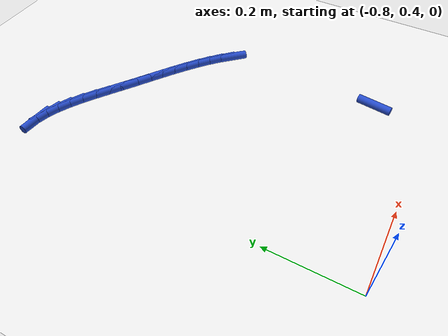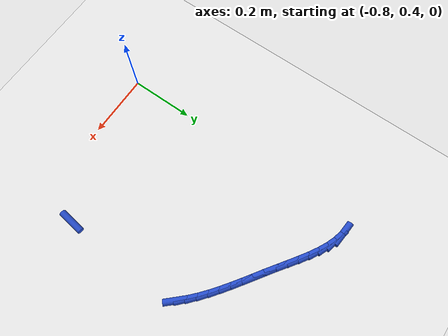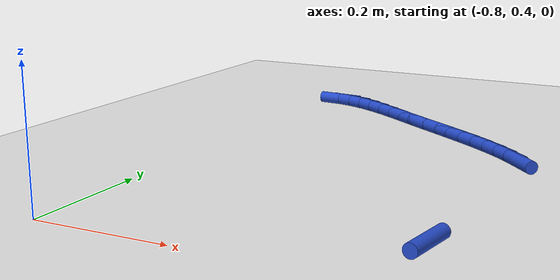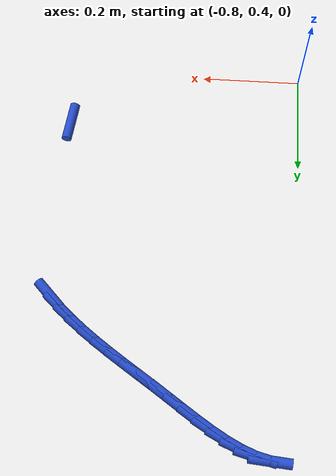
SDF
<sdf version="1.6">
 <world name="default">
  <model name="ground_plane">
   <static>1</static>
   <link name="link">
    <collision name="collision">
     <geometry><plane><normal>0 0 1</normal><size>100 100</size></plane></geometry>
     <surface><friction><ode><mu>100</mu><mu2>50</mu2></ode></friction></surface>
    </collision>
    <visual name="visual">
     <cast_shadows>0</cast_shadows>
     <geometry><plane><normal>0 0 1</normal><size>100 100</size></plane></geometry>
     <material>
      <script><uri>file://media/materials/scripts/gazebo.material</uri><name>Gazebo/WhiteGlow</name></script>
     </material>
    </visual>
   </link>
  </model>
  <model name="line">
   <link name="link_23">
    <pose>-0.33134182901004033 0.524633917281186 0.01 0 1.57 1.4418799400258353</pose>
    <collision name="collision">
     <geometry><cylinder><radius>0.01</radius><length>0.08</length></cylinder></geometry>
    </collision>
    <visual name="visual">
     <material>
      <script><name>Gazebo/Blue</name><uri>file://media/materials/scripts/gazebo.material</uri></script>
     </material>
     <geometry><cylinder><radius>0.01</radius><length>0.08</length></cylinder></geometry>
    </visual>
   </link>
   <link name="link_37">
    <pose>-0.331901536776559 0.9036727298471181 0.01 0 1.57 -0.8080920019695839</pose>
    <collision name="collision">
     <geometry><cylinder><radius>0.01</radius><length>0.08</length></cylinder></geometry>
    </collision>
    <visual name="visual">
     <material>
      <script><name>Gazebo/Blue</name><uri>file://media/materials/scripts/gazebo.material</uri></script>
     </material>
     <geometry><cylinder><radius>0.01</radius><length>0.08</length></cylinder></geometry>
    </visual>
   </link>
   <link name="link_38">
    <pose>-0.35218671215712105 0.9249001470630835 0.01 0 1.57 -0.7433458245390401</pose>
    <collision name="collision">
     <geometry><cylinder><radius>0.01</radius><length>0.08</length></cylinder></geometry>
    </collision>
    <visual name="visual">
     <material>
      <script><name>Gazebo/Blue</name><uri>file://media/materials/scripts/gazebo.material</uri></script>
     </material>
     <geometry><cylinder><radius>0.01</radius><length>0.08</length></cylinder></geometry>
    </visual>
   </link>
   <link name="link_39">
    <pose>-0.374618032023356 0.9455199966369892 0.01 0 1.57 -0.6925329728596181</pose>
    <collision name="collision">
     <geometry><cylinder><radius>0.01</radius><length>0.08</length></cylinder></geometry>
    </collision>
    <visual name="visual">
     <material>
      <script><name>Gazebo/Blue</name><uri>file://media/materials/scripts/gazebo.material</uri></script>
     </material>
     <geometry><cylinder><radius>0.01</radius><length>0.08</length></cylinder></geometry>
    </visual>
   </link>
   <link name="link_40">
    <pose>-0.3988698963134552 0.9656394261439866 0.01 0 1.57 -0.6537631039490145</pose>
    <collision name="collision">
     <geometry><cylinder><radius>0.01</radius><length>0.08</length></cylinder></geometry>
    </collision>
    <visual name="visual">
     <material>
      <script><name>Gazebo/Blue</name><uri>file://media/materials/scripts/gazebo.material</uri></script>
     </material>
     <geometry><cylinder><radius>0.01</radius><length>0.08</length></cylinder></geometry>
    </visual>
   </link>
   <link name="link_41">
    <pose>-0.4246167049656112 0.9853655831592272 0.01 0 1.57 -0.6254994043652939</pose>
    <collision name="collision">
     <geometry><cylinder><radius>0.01</radius><length>0.08</length></cylinder></geometry>
    </collision>
    <visual name="visual">
     <material>
      <script><name>Gazebo/Blue</name><uri>file://media/materials/scripts/gazebo.material</uri></script>
     </material>
     <geometry><cylinder><radius>0.01</radius><length>0.08</length></cylinder></geometry>
    </visual>
   </link>
   <link name="link_42">
    <pose>-0.45153285791801556 1.004805615257863 0.01 0 1.57 -0.6065828659534458</pose>
    <collision name="collision">
     <geometry><cylinder><radius>0.01</radius><length>0.08</length></cylinder></geometry>
    </collision>
    <visual name="visual">
     <material>
      <script><name>Gazebo/Blue</name><uri>file://media/materials/scripts/gazebo.material</uri></script>
     </material>
     <geometry><cylinder><radius>0.01</radius><length>0.08</length></cylinder></geometry>
    </visual>
   </link>
   <link name="link_43">
    <pose>-0.4792927551088602 1.024066670015045 0.01 0 1.57 -0.5962125570922455</pose>
    <collision name="collision">
     <geometry><cylinder><radius>0.01</radius><length>0.08</length></cylinder></geometry>
    </collision>
    <visual name="visual">
     <material>
      <script><name>Gazebo/Blue</name><uri>file://media/materials/scripts/gazebo.material</uri></script>
     </material>
     <geometry><cylinder><radius>0.01</radius><length>0.08</length></cylinder></geometry>
    </visual>
   </link>
   <link name="link_44">
    <pose>-0.5075707964763374 1.0432558950059245 0.01 0 1.57 -0.593916085844543</pose>
    <collision name="collision">
     <geometry><cylinder><radius>0.01</radius><length>0.08</length></cylinder></geometry>
    </collision>
    <visual name="visual">
     <material>
      <script><name>Gazebo/Blue</name><uri>file://media/materials/scripts/gazebo.material</uri></script>
     </material>
     <geometry><cylinder><radius>0.01</radius><length>0.08</length></cylinder></geometry>
    </visual>
   </link>
   <link name="link_45">
    <pose>-0.5360413819586386 1.0624804378056534 0.01 0 1.57 -0.5995219418135074</pose>
    <collision name="collision">
     <geometry><cylinder><radius>0.01</radius><length>0.08</length></cylinder></geometry>
    </collision>
    <visual name="visual">
     <material>
      <script><name>Gazebo/Blue</name><uri>file://media/materials/scripts/gazebo.material</uri></script>
     </material>
     <geometry><cylinder><radius>0.01</radius><length>0.08</length></cylinder></geometry>
    </visual>
   </link>
   <link name="link_46">
    <pose>-0.5643789610953457 1.0818473376550897 0.01 0 1.57 -0.6078675938707381</pose>
    <collision name="collision">
     <geometry><cylinder><radius>0.01</radius><length>0.08</length></cylinder></geometry>
    </collision>
    <visual name="visual">
     <material>
      <script><name>Gazebo/Blue</name><uri>file://media/materials/scripts/gazebo.material</uri></script>
     </material>
     <geometry><cylinder><radius>0.01</radius><length>0.08</length></cylinder></geometry>
    </visual>
   </link>
   <link name="link_47">
    <pose>-0.5923341956937188 1.1012971787352988 0.01 0 1.57 -0.6029806124443239</pose>
    <collision name="collision">
     <geometry><cylinder><radius>0.01</radius><length>0.08</length></cylinder></geometry>
    </collision>
    <visual name="visual">
     <material>
      <script><name>Gazebo/Blue</name><uri>file://media/materials/scripts/gazebo.material</uri></script>
     </material>
     <geometry><cylinder><radius>0.01</radius><length>0.08</length></cylinder></geometry>
    </visual>
   </link>
   <link name="link_48">
    <pose>-0.6198876824722556 1.1202683448524844 0.01 0 1.57 -0.5808232307339538</pose>
    <collision name="collision">
     <geometry><cylinder><radius>0.01</radius><length>0.08</length></cylinder></geometry>
    </collision>
    <visual name="visual">
     <material>
      <script><name>Gazebo/Blue</name><uri>file://media/materials/scripts/gazebo.material</uri></script>
     </material>
     <geometry><cylinder><radius>0.01</radius><length>0.08</length></cylinder></geometry>
    </visual>
   </link>
   <link name="link_49">
    <pose>-0.6470632098422603 1.138104884923891 0.01 0 1.57 -0.5391341168677953</pose>
    <collision name="collision">
     <geometry><cylinder><radius>0.01</radius><length>0.08</length></cylinder></geometry>
    </collision>
    <visual name="visual">
     <material>
      <script><name>Gazebo/Blue</name><uri>file://media/materials/scripts/gazebo.material</uri></script>
     </material>
     <geometry><cylinder><radius>0.01</radius><length>0.08</length></cylinder></geometry>
    </visual>
   </link>
   <link name="link_50">
    <pose>-0.6738845662150379 1.1541508478667641 0.01 0 1.57 -0.47427924475330885</pose>
    <collision name="collision">
     <geometry><cylinder><radius>0.01</radius><length>0.08</length></cylinder></geometry>
    </collision>
    <visual name="visual">
     <material>
      <script><name>Gazebo/Blue</name><uri>file://media/materials/scripts/gazebo.material</uri></script>
     </material>
     <geometry><cylinder><radius>0.01</radius><length>0.08</length></cylinder></geometry>
    </visual>
   </link>
   <link name="link_51">
    <pose>-0.7003755400018931 1.167750282598349 0.01 0 1.57 -0.38127007604198465</pose>
    <collision name="collision">
     <geometry><cylinder><radius>0.01</radius><length>0.08</length></cylinder></geometry>
    </collision>
    <visual name="visual">
     <material>
      <script><name>Gazebo/Blue</name><uri>file://media/materials/scripts/gazebo.material</uri></script>
     </material>
     <geometry><cylinder><radius>0.01</radius><length>0.08</length></cylinder></geometry>
    </visual>
   </link>
   <link name="link_52">
    <pose>-0.7265599196141309 1.1782472380358906 0.01 0 1.57 -0.2545168949227195</pose>
    <collision name="collision">
     <geometry><cylinder><radius>0.01</radius><length>0.08</length></cylinder></geometry>
    </collision>
    <visual name="visual">
     <material>
      <script><name>Gazebo/Blue</name><uri>file://media/materials/scripts/gazebo.material</uri></script>
     </material>
     <geometry><cylinder><radius>0.01</radius><length>0.08</length></cylinder></geometry>
    </visual>
   </link>
   <link name="link_53">
    <pose>-0.7524614934630555 1.1849857630966336 0.01 0 1.57 -0.09038921569735227</pose>
    <collision name="collision">
     <geometry><cylinder><radius>0.01</radius><length>0.08</length></cylinder></geometry>
    </collision>
    <visual name="visual">
     <material>
      <script><name>Gazebo/Blue</name><uri>file://media/materials/scripts/gazebo.material</uri></script>
     </material>
     <geometry><cylinder><radius>0.01</radius><length>0.08</length></cylinder></geometry>
    </visual>
   </link>
  </model>
 </world>
</sdf>
